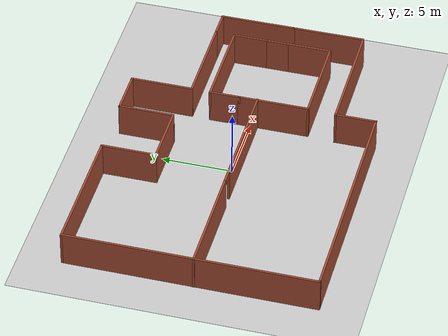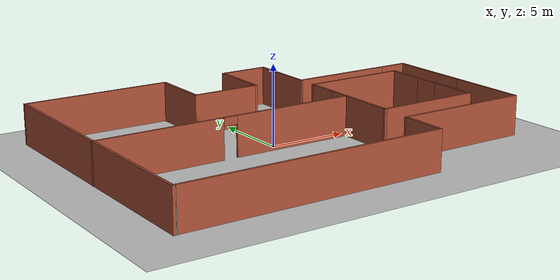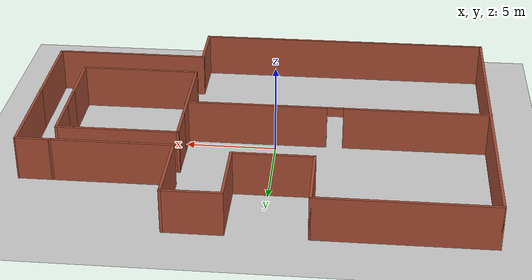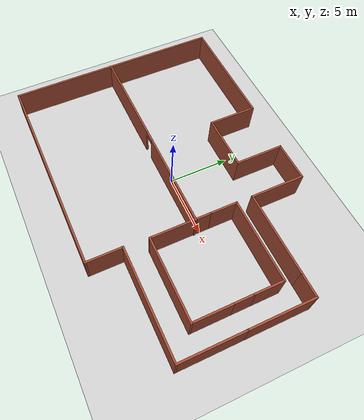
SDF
<sdf version="1.7">
 <world name="default">
  <include><uri>model://ground_plane</uri></include>
  <include><uri>model://sun</uri></include>
  <gravity>0 0 -9.8</gravity>
  <magnetic_field>6e-06 2.3e-05 -4.2e-05</magnetic_field>
  <atmosphere type="adiabatic"/>
  <physics type="ode">
   <max_step_size>0.001</max_step_size>
   <real_time_factor>1</real_time_factor>
   <real_time_update_rate>1000</real_time_update_rate>
  </physics>
  <scene><ambient>0.4 0.4 0.4 1</ambient><background>0.7 0.7 0.7 1</background><shadows>1</shadows></scene>
  <spherical_coordinates>
   <surface_model>EARTH_WGS84</surface_model>
   <latitude_deg>0</latitude_deg>
   <longitude_deg>0</longitude_deg>
   <elevation>0</elevation>
   <heading_deg>0</heading_deg>
  </spherical_coordinates>
  <model name="Building">
   <link name="Wall_1">
    <pose>-11.6652 8.8 0 0 -0 0</pose>
    <visual name="Wall_1_Visual">
     <pose>0 0 1.25 0 -0 0</pose>
     <geometry><box><size>9.5 0.15 2.5</size></box></geometry>
     <material>
      <script><uri>file://media/materials/scripts/gazebo.material</uri><name>Gazebo/Bricks</name></script>
      <ambient>1 1 1 1</ambient>
      <shader type="pixel"/>
     </material>
     <meta><layer>0</layer></meta>
    </visual>
    <collision name="Wall_1_Collision">
     <pose>0 0 1.25 0 -0 0</pose>
     <geometry><box><size>9.5 0.15 2.5</size></box></geometry>
     <surface>
      <friction>
       <ode><mu>1</mu><mu2>1</mu2><fdir1>0 0 0</fdir1><slip1>0</slip1><slip2>0</slip2></ode>
       <torsional>
        <coefficient>1</coefficient>
        <patch_radius>0</patch_radius>
        <surface_radius>0</surface_radius>
        <use_patch_radius>1</use_patch_radius>
        <ode><slip>0</slip></ode>
       </torsional>
      </friction>
      <bounce><restitution_coefficient>0</restitution_coefficient><threshold>1e+06</threshold></bounce>
      <contact>
       <collide_without_contact>0</collide_without_contact>
       <collide_without_contact_bitmask>1</collide_without_contact_bitmask>
       <collide_bitmask>1</collide_bitmask>
       <ode>
        <soft_cfm>0</soft_cfm>
        <soft_erp>0.2</soft_erp>
        <kp>1e+13</kp>
        <kd>1</kd>
        <max_vel>0.01</max_vel>
        <min_depth>0</min_depth>
       </ode>
       <bullet>
        <split_impulse>1</split_impulse>
        <split_impulse_penetration_threshold>-0.01</split_impulse_penetration_threshold>
        <soft_cfm>0</soft_cfm>
        <soft_erp>0.2</soft_erp>
        <kp>1e+13</kp>
        <kd>1</kd>
       </bullet>
      </contact>
     </surface>
    </collision>
   </link>
   <link name="Wall_10">
    <pose>-1.09018 8.8 0 0 -0 0</pose>
    <visual name="Wall_10_Visual">
     <pose>0 0 1.25 0 -0 0</pose>
     <geometry><box><size>3.25 0.15 2.5</size></box></geometry>
     <material>
      <script><uri>file://media/materials/scripts/gazebo.material</uri><name>Gazebo/Bricks</name></script>
      <ambient>1 1 1 1</ambient>
      <shader type="pixel"/>
     </material>
     <meta><layer>0</layer></meta>
    </visual>
    <collision name="Wall_10_Collision">
     <pose>0 0 1.25 0 -0 0</pose>
     <geometry><box><size>3.25 0.15 2.5</size></box></geometry>
     <surface>
      <friction>
       <ode><mu>1</mu><mu2>1</mu2><fdir1>0 0 0</fdir1><slip1>0</slip1><slip2>0</slip2></ode>
       <torsional>
        <coefficient>1</coefficient>
        <patch_radius>0</patch_radius>
        <surface_radius>0</surface_radius>
        <use_patch_radius>1</use_patch_radius>
        <ode><slip>0</slip></ode>
       </torsional>
      </friction>
      <bounce><restitution_coefficient>0</restitution_coefficient><threshold>1e+06</threshold></bounce>
      <contact>
       <collide_without_contact>0</collide_without_contact>
       <collide_without_contact_bitmask>1</collide_without_contact_bitmask>
       <collide_bitmask>1</collide_bitmask>
       <ode>
        <soft_cfm>0</soft_cfm>
        <soft_erp>0.2</soft_erp>
        <kp>1e+13</kp>
        <kd>1</kd>
        <max_vel>0.01</max_vel>
        <min_depth>0</min_depth>
       </ode>
       <bullet>
        <split_impulse>1</split_impulse>
        <split_impulse_penetration_threshold>-0.01</split_impulse_penetration_threshold>
        <soft_cfm>0</soft_cfm>
        <soft_erp>0.2</soft_erp>
        <kp>1e+13</kp>
        <kd>1</kd>
       </bullet>
      </contact>
     </surface>
    </collision>
   </link>
   <link name="Wall_11">
    <pose>0.45982 6.625 0 0 0 -1.5708</pose>
    <visual name="Wall_11_Visual">
     <pose>0 0 1.25 0 -0 0</pose>
     <geometry><box><size>4.5 0.15 2.5</size></box></geometry>
     <material>
      <script><uri>file://media/materials/scripts/gazebo.material</uri><name>Gazebo/Bricks</name></script>
      <ambient>1 1 1 1</ambient>
      <shader type="pixel"/>
     </material>
     <meta><layer>0</layer></meta>
    </visual>
    <collision name="Wall_11_Collision">
     <pose>0 0 1.25 0 -0 0</pose>
     <geometry><box><size>4.5 0.15 2.5</size></box></geometry>
     <surface>
      <friction>
       <ode><mu>1</mu><mu2>1</mu2><fdir1>0 0 0</fdir1><slip1>0</slip1><slip2>0</slip2></ode>
       <torsional>
        <coefficient>1</coefficient>
        <patch_radius>0</patch_radius>
        <surface_radius>0</surface_radius>
        <use_patch_radius>1</use_patch_radius>
        <ode><slip>0</slip></ode>
       </torsional>
      </friction>
      <bounce><restitution_coefficient>0</restitution_coefficient><threshold>1e+06</threshold></bounce>
      <contact>
       <collide_without_contact>0</collide_without_contact>
       <collide_without_contact_bitmask>1</collide_without_contact_bitmask>
       <collide_bitmask>1</collide_bitmask>
       <ode>
        <soft_cfm>0</soft_cfm>
        <soft_erp>0.2</soft_erp>
        <kp>1e+13</kp>
        <kd>1</kd>
        <max_vel>0.01</max_vel>
        <min_depth>0</min_depth>
       </ode>
       <bullet>
        <split_impulse>1</split_impulse>
        <split_impulse_penetration_threshold>-0.01</split_impulse_penetration_threshold>
        <soft_cfm>0</soft_cfm>
        <soft_erp>0.2</soft_erp>
        <kp>1e+13</kp>
        <kd>1</kd>
       </bullet>
      </contact>
     </surface>
    </collision>
   </link>
   <link name="Wall_30">
    <pose>0.434769 2.05416 0 0 0 -1.5708</pose>
    <visual name="Wall_30_Visual">
     <pose>0 0 1.25 0 -0 0</pose>
     <geometry><box><size>2.25 0.15 2.5</size></box></geometry>
     <material>
      <script><uri>file://media/materials/scripts/gazebo.material</uri><name>Gazebo/Bricks</name></script>
      <ambient>1 1 1 1</ambient>
      <shader type="pixel"/>
     </material>
     <meta><layer>0</layer></meta>
    </visual>
    <collision name="Wall_30_Collision">
     <pose>0 0 1.25 0 -0 0</pose>
     <geometry><box><size>2.25 0.15 2.5</size></box></geometry>
     <surface>
      <friction>
       <ode><mu>1</mu><mu2>1</mu2><fdir1>0 0 0</fdir1><slip1>0</slip1><slip2>0</slip2></ode>
       <torsional>
        <coefficient>1</coefficient>
        <patch_radius>0</patch_radius>
        <surface_radius>0</surface_radius>
        <use_patch_radius>1</use_patch_radius>
        <ode><slip>0</slip></ode>
       </torsional>
      </friction>
      <bounce><restitution_coefficient>0</restitution_coefficient><threshold>1e+06</threshold></bounce>
      <contact>
       <collide_without_contact>0</collide_without_contact>
       <collide_without_contact_bitmask>1</collide_without_contact_bitmask>
       <collide_bitmask>1</collide_bitmask>
       <ode>
        <soft_cfm>0</soft_cfm>
        <soft_erp>0.2</soft_erp>
        <kp>1e+13</kp>
        <kd>1</kd>
        <max_vel>0.01</max_vel>
        <min_depth>0</min_depth>
       </ode>
       <bullet>
        <split_impulse>1</split_impulse>
        <split_impulse_penetration_threshold>-0.01</split_impulse_penetration_threshold>
        <soft_cfm>0</soft_cfm>
        <soft_erp>0.2</soft_erp>
        <kp>1e+13</kp>
        <kd>1</kd>
       </bullet>
      </contact>
     </surface>
    </collision>
   </link>
   <link name="Wall_32">
    <pose>3.75982 4.45 0 0 -0 0</pose>
    <visual name="Wall_32_Visual">
     <pose>0 0 1.25 0 -0 0</pose>
     <geometry><box><size>6.75 0.15 2.5</size></box></geometry>
     <material>
      <script><uri>file://media/materials/scripts/gazebo.material</uri><name>Gazebo/Bricks</name></script>
      <ambient>1 1 1 1</ambient>
      <shader type="pixel"/>
     </material>
     <meta><layer>0</layer></meta>
    </visual>
    <collision name="Wall_32_Collision">
     <pose>0 0 1.25 0 -0 0</pose>
     <geometry><box><size>6.75 0.15 2.5</size></box></geometry>
     <surface>
      <friction>
       <ode><mu>1</mu><mu2>1</mu2><fdir1>0 0 0</fdir1><slip1>0</slip1><slip2>0</slip2></ode>
       <torsional>
        <coefficient>1</coefficient>
        <patch_radius>0</patch_radius>
        <surface_radius>0</surface_radius>
        <use_patch_radius>1</use_patch_radius>
        <ode><slip>0</slip></ode>
       </torsional>
      </friction>
      <bounce><restitution_coefficient>0</restitution_coefficient><threshold>1e+06</threshold></bounce>
      <contact>
       <collide_without_contact>0</collide_without_contact>
       <collide_without_contact_bitmask>1</collide_without_contact_bitmask>
       <collide_bitmask>1</collide_bitmask>
       <ode>
        <soft_cfm>0</soft_cfm>
        <soft_erp>0.2</soft_erp>
        <kp>1e+13</kp>
        <kd>1</kd>
        <max_vel>0.01</max_vel>
        <min_depth>0</min_depth>
       </ode>
       <bullet>
        <split_impulse>1</split_impulse>
        <split_impulse_penetration_threshold>-0.01</split_impulse_penetration_threshold>
        <soft_cfm>0</soft_cfm>
        <soft_erp>0.2</soft_erp>
        <kp>1e+13</kp>
        <kd>1</kd>
       </bullet>
      </contact>
     </surface>
    </collision>
   </link>
   <link name="Wall_34">
    <pose>3.73477 3.10416 0 0 -0 0</pose>
    <visual name="Wall_34_Visual">
     <pose>0 0 1.25 0 -0 0</pose>
     <geometry><box><size>6.75 0.15 2.5</size></box></geometry>
     <material>
      <script><uri>file://media/materials/scripts/gazebo.material</uri><name>Gazebo/Bricks</name></script>
      <ambient>1 1 1 1</ambient>
      <shader type="pixel"/>
     </material>
     <meta><layer>0</layer></meta>
    </visual>
    <collision name="Wall_34_Collision">
     <pose>0 0 1.25 0 -0 0</pose>
     <geometry><box><size>6.75 0.15 2.5</size></box></geometry>
     <surface>
      <friction>
       <ode><mu>1</mu><mu2>1</mu2><fdir1>0 0 0</fdir1><slip1>0</slip1><slip2>0</slip2></ode>
       <torsional>
        <coefficient>1</coefficient>
        <patch_radius>0</patch_radius>
        <surface_radius>0</surface_radius>
        <use_patch_radius>1</use_patch_radius>
        <ode><slip>0</slip></ode>
       </torsional>
      </friction>
      <bounce><restitution_coefficient>0</restitution_coefficient><threshold>1e+06</threshold></bounce>
      <contact>
       <collide_without_contact>0</collide_without_contact>
       <collide_without_contact_bitmask>1</collide_without_contact_bitmask>
       <collide_bitmask>1</collide_bitmask>
       <ode>
        <soft_cfm>0</soft_cfm>
        <soft_erp>0.2</soft_erp>
        <kp>1e+13</kp>
        <kd>1</kd>
        <max_vel>0.01</max_vel>
        <min_depth>0</min_depth>
       </ode>
       <bullet>
        <split_impulse>1</split_impulse>
        <split_impulse_penetration_threshold>-0.01</split_impulse_penetration_threshold>
        <soft_cfm>0</soft_cfm>
        <soft_erp>0.2</soft_erp>
        <kp>1e+13</kp>
        <kd>1</kd>
       </bullet>
      </contact>
     </surface>
    </collision>
   </link>
   <link name="Wall_36">
    <pose>7.03477 1.92916 0 0 0 -1.5708</pose>
    <visual name="Wall_36_Visual">
     <pose>0 0 1.25 0 -0 0</pose>
     <geometry><box><size>2.5 0.15 2.5</size></box></geometry>
     <material>
      <script><uri>file://media/materials/scripts/gazebo.material</uri><name>Gazebo/Bricks</name></script>
      <ambient>1 1 1 1</ambient>
      <shader type="pixel"/>
     </material>
     <meta><layer>0</layer></meta>
    </visual>
    <collision name="Wall_36_Collision">
     <pose>0 0 1.25 0 -0 0</pose>
     <geometry><box><size>2.5 0.15 2.5</size></box></geometry>
     <surface>
      <friction>
       <ode><mu>1</mu><mu2>1</mu2><fdir1>0 0 0</fdir1><slip1>0</slip1><slip2>0</slip2></ode>
       <torsional>
        <coefficient>1</coefficient>
        <patch_radius>0</patch_radius>
        <surface_radius>0</surface_radius>
        <use_patch_radius>1</use_patch_radius>
        <ode><slip>0</slip></ode>
       </torsional>
      </friction>
      <bounce><restitution_coefficient>0</restitution_coefficient><threshold>1e+06</threshold></bounce>
      <contact>
       <collide_without_contact>0</collide_without_contact>
       <collide_without_contact_bitmask>1</collide_without_contact_bitmask>
       <collide_bitmask>1</collide_bitmask>
       <ode>
        <soft_cfm>0</soft_cfm>
        <soft_erp>0.2</soft_erp>
        <kp>1e+13</kp>
        <kd>1</kd>
        <max_vel>0.01</max_vel>
        <min_depth>0</min_depth>
       </ode>
       <bullet>
        <split_impulse>1</split_impulse>
        <split_impulse_penetration_threshold>-0.01</split_impulse_penetration_threshold>
        <soft_cfm>0</soft_cfm>
        <soft_erp>0.2</soft_erp>
        <kp>1e+13</kp>
        <kd>1</kd>
       </bullet>
      </contact>
     </surface>
    </collision>
   </link>
   <link name="Wall_38">
    <pose>7.9847 4.44981 0 0 0 -0.000207</pose>
    <visual name="Wall_38_Visual">
     <pose>0 0 1.25 0 -0 0</pose>
     <geometry><box><size>2 0.15 2.5</size></box></geometry>
     <material>
      <script><uri>file://media/materials/scripts/gazebo.material</uri><name>Gazebo/Bricks</name></script>
      <ambient>1 1 1 1</ambient>
      <shader type="pixel"/>
     </material>
     <meta><layer>0</layer></meta>
    </visual>
    <collision name="Wall_38_Collision">
     <pose>0 0 1.25 0 -0 0</pose>
     <geometry><box><size>2 0.15 2.5</size></box></geometry>
     <surface>
      <friction>
       <ode><mu>1</mu><mu2>1</mu2><fdir1>0 0 0</fdir1><slip1>0</slip1><slip2>0</slip2></ode>
       <torsional>
        <coefficient>1</coefficient>
        <patch_radius>0</patch_radius>
        <surface_radius>0</surface_radius>
        <use_patch_radius>1</use_patch_radius>
        <ode><slip>0</slip></ode>
       </torsional>
      </friction>
      <bounce><restitution_coefficient>0</restitution_coefficient><threshold>1e+06</threshold></bounce>
      <contact>
       <collide_without_contact>0</collide_without_contact>
       <collide_without_contact_bitmask>1</collide_without_contact_bitmask>
       <collide_bitmask>1</collide_bitmask>
       <ode>
        <soft_cfm>0</soft_cfm>
        <soft_erp>0.2</soft_erp>
        <kp>1e+13</kp>
        <kd>1</kd>
        <max_vel>0.01</max_vel>
        <min_depth>0</min_depth>
       </ode>
       <bullet>
        <split_impulse>1</split_impulse>
        <split_impulse_penetration_threshold>-0.01</split_impulse_penetration_threshold>
        <soft_cfm>0</soft_cfm>
        <soft_erp>0.2</soft_erp>
        <kp>1e+13</kp>
        <kd>1</kd>
       </bullet>
      </contact>
     </surface>
    </collision>
   </link>
   <link name="Wall_39">
    <pose>8.90957 1.80212 0 0 0 -1.5708</pose>
    <visual name="Wall_39_Visual">
     <pose>0 0 1.25 0 -0 0</pose>
     <geometry><box><size>5.445 0.15 2.5</size></box></geometry>
     <material>
      <script><uri>file://media/materials/scripts/gazebo.material</uri><name>Gazebo/Bricks</name></script>
      <ambient>1 1 1 1</ambient>
      <shader type="pixel"/>
     </material>
     <meta><layer>0</layer></meta>
    </visual>
    <collision name="Wall_39_Collision">
     <pose>0 0 1.25 0 -0 0</pose>
     <geometry><box><size>5.445 0.15 2.5</size></box></geometry>
     <surface>
      <friction>
       <ode><mu>1</mu><mu2>1</mu2><fdir1>0 0 0</fdir1><slip1>0</slip1><slip2>0</slip2></ode>
       <torsional>
        <coefficient>1</coefficient>
        <patch_radius>0</patch_radius>
        <surface_radius>0</surface_radius>
        <use_patch_radius>1</use_patch_radius>
        <ode><slip>0</slip></ode>
       </torsional>
      </friction>
      <bounce><restitution_coefficient>0</restitution_coefficient><threshold>1e+06</threshold></bounce>
      <contact>
       <collide_without_contact>0</collide_without_contact>
       <collide_without_contact_bitmask>1</collide_without_contact_bitmask>
       <collide_bitmask>1</collide_bitmask>
       <ode>
        <soft_cfm>0</soft_cfm>
        <soft_erp>0.2</soft_erp>
        <kp>1e+13</kp>
        <kd>1</kd>
        <max_vel>0.01</max_vel>
        <min_depth>0</min_depth>
       </ode>
       <bullet>
        <split_impulse>1</split_impulse>
        <split_impulse_penetration_threshold>-0.01</split_impulse_penetration_threshold>
        <soft_cfm>0</soft_cfm>
        <soft_erp>0.2</soft_erp>
        <kp>1e+13</kp>
        <kd>1</kd>
       </bullet>
      </contact>
     </surface>
    </collision>
   </link>
   <link name="Wall_43">
    <pose>7.03477 -0.045843 0 0 0 -1.5708</pose>
    <visual name="Wall_43_Visual">
     <pose>0 0 1.25 0 -0 0</pose>
     <geometry><box><size>1.75 0.15 2.5</size></box></geometry>
     <material>
      <script><uri>file://media/materials/scripts/gazebo.material</uri><name>Gazebo/Bricks</name></script>
      <ambient>1 1 1 1</ambient>
      <shader type="pixel"/>
     </material>
     <meta><layer>0</layer></meta>
    </visual>
    <collision name="Wall_43_Collision">
     <pose>0 0 1.25 0 -0 0</pose>
     <geometry><box><size>1.75 0.15 2.5</size></box></geometry>
     <surface>
      <friction>
       <ode><mu>1</mu><mu2>1</mu2><fdir1>0 0 0</fdir1><slip1>0</slip1><slip2>0</slip2></ode>
       <torsional>
        <coefficient>1</coefficient>
        <patch_radius>0</patch_radius>
        <surface_radius>0</surface_radius>
        <use_patch_radius>1</use_patch_radius>
        <ode><slip>0</slip></ode>
       </torsional>
      </friction>
      <bounce><restitution_coefficient>0</restitution_coefficient><threshold>1e+06</threshold></bounce>
      <contact>
       <collide_without_contact>0</collide_without_contact>
       <collide_without_contact_bitmask>1</collide_without_contact_bitmask>
       <collide_bitmask>1</collide_bitmask>
       <ode>
        <soft_cfm>0</soft_cfm>
        <soft_erp>0.2</soft_erp>
        <kp>1e+13</kp>
        <kd>1</kd>
        <max_vel>0.01</max_vel>
        <min_depth>0</min_depth>
       </ode>
       <bullet>
        <split_impulse>1</split_impulse>
        <split_impulse_penetration_threshold>-0.01</split_impulse_penetration_threshold>
        <soft_cfm>0</soft_cfm>
        <soft_erp>0.2</soft_erp>
        <kp>1e+13</kp>
        <kd>1</kd>
       </bullet>
      </contact>
     </surface>
    </collision>
   </link>
   <link name="Wall_47">
    <pose>7.03477 -2.39584 0 0 0 -1.5708</pose>
    <visual name="Wall_47_Visual">
     <pose>0 0 1.25 0 -0 0</pose>
     <geometry><box><size>3.25 0.15 2.5</size></box></geometry>
     <material>
      <script><uri>file://media/materials/scripts/gazebo.material</uri><name>Gazebo/Bricks</name></script>
      <ambient>1 1 1 1</ambient>
      <shader type="pixel"/>
     </material>
     <meta><layer>0</layer></meta>
    </visual>
    <collision name="Wall_47_Collision">
     <pose>0 0 1.25 0 -0 0</pose>
     <geometry><box><size>3.25 0.15 2.5</size></box></geometry>
     <surface>
      <friction>
       <ode><mu>1</mu><mu2>1</mu2><fdir1>0 0 0</fdir1><slip1>0</slip1><slip2>0</slip2></ode>
       <torsional>
        <coefficient>1</coefficient>
        <patch_radius>0</patch_radius>
        <surface_radius>0</surface_radius>
        <use_patch_radius>1</use_patch_radius>
        <ode><slip>0</slip></ode>
       </torsional>
      </friction>
      <bounce><restitution_coefficient>0</restitution_coefficient><threshold>1e+06</threshold></bounce>
      <contact>
       <collide_without_contact>0</collide_without_contact>
       <collide_without_contact_bitmask>1</collide_without_contact_bitmask>
       <collide_bitmask>1</collide_bitmask>
       <ode>
        <soft_cfm>0</soft_cfm>
        <soft_erp>0.2</soft_erp>
        <kp>1e+13</kp>
        <kd>1</kd>
        <max_vel>0.01</max_vel>
        <min_depth>0</min_depth>
       </ode>
       <bullet>
        <split_impulse>1</split_impulse>
        <split_impulse_penetration_threshold>-0.01</split_impulse_penetration_threshold>
        <soft_cfm>0</soft_cfm>
        <soft_erp>0.2</soft_erp>
        <kp>1e+13</kp>
        <kd>1</kd>
       </bullet>
      </contact>
     </surface>
    </collision>
   </link>
   <link name="Wall_48">
    <pose>3.73477 -3.94584 0 0 -0 3.14159</pose>
    <visual name="Wall_48_Visual">
     <pose>0 0 1.25 0 -0 0</pose>
     <geometry><box><size>6.75 0.15 2.5</size></box></geometry>
     <material>
      <script><uri>file://media/materials/scripts/gazebo.material</uri><name>Gazebo/Bricks</name></script>
      <ambient>1 1 1 1</ambient>
      <shader type="pixel"/>
     </material>
     <meta><layer>0</layer></meta>
    </visual>
    <collision name="Wall_48_Collision">
     <pose>0 0 1.25 0 -0 0</pose>
     <geometry><box><size>6.75 0.15 2.5</size></box></geometry>
     <surface>
      <friction>
       <ode><mu>1</mu><mu2>1</mu2><fdir1>0 0 0</fdir1><slip1>0</slip1><slip2>0</slip2></ode>
       <torsional>
        <coefficient>1</coefficient>
        <patch_radius>0</patch_radius>
        <surface_radius>0</surface_radius>
        <use_patch_radius>1</use_patch_radius>
        <ode><slip>0</slip></ode>
       </torsional>
      </friction>
      <bounce><restitution_coefficient>0</restitution_coefficient><threshold>1e+06</threshold></bounce>
      <contact>
       <collide_without_contact>0</collide_without_contact>
       <collide_without_contact_bitmask>1</collide_without_contact_bitmask>
       <collide_bitmask>1</collide_bitmask>
       <ode>
        <soft_cfm>0</soft_cfm>
        <soft_erp>0.2</soft_erp>
        <kp>1e+13</kp>
        <kd>1</kd>
        <max_vel>0.01</max_vel>
        <min_depth>0</min_depth>
       </ode>
       <bullet>
        <split_impulse>1</split_impulse>
        <split_impulse_penetration_threshold>-0.01</split_impulse_penetration_threshold>
        <soft_cfm>0</soft_cfm>
        <soft_erp>0.2</soft_erp>
        <kp>1e+13</kp>
        <kd>1</kd>
       </bullet>
      </contact>
     </surface>
    </collision>
   </link>
   <link name="Wall_49">
    <pose>0.434769 -1.47084 0 0 -0 1.5708</pose>
    <visual name="Wall_49_Visual">
     <pose>0 0 1.25 0 -0 0</pose>
     <geometry><box><size>5.1 0.15 2.5</size></box></geometry>
     <material>
      <script><uri>file://media/materials/scripts/gazebo.material</uri><name>Gazebo/Bricks</name></script>
      <ambient>1 1 1 1</ambient>
      <shader type="pixel"/>
     </material>
     <meta><layer>0</layer></meta>
    </visual>
    <collision name="Wall_49_Collision">
     <pose>0 0 1.25 0 -0 0</pose>
     <geometry><box><size>5.1 0.15 2.5</size></box></geometry>
     <surface>
      <friction>
       <ode><mu>1</mu><mu2>1</mu2><fdir1>0 0 0</fdir1><slip1>0</slip1><slip2>0</slip2></ode>
       <torsional>
        <coefficient>1</coefficient>
        <patch_radius>0</patch_radius>
        <surface_radius>0</surface_radius>
        <use_patch_radius>1</use_patch_radius>
        <ode><slip>0</slip></ode>
       </torsional>
      </friction>
      <bounce><restitution_coefficient>0</restitution_coefficient><threshold>1e+06</threshold></bounce>
      <contact>
       <collide_without_contact>0</collide_without_contact>
       <collide_without_contact_bitmask>1</collide_without_contact_bitmask>
       <collide_bitmask>1</collide_bitmask>
       <ode>
        <soft_cfm>0</soft_cfm>
        <soft_erp>0.2</soft_erp>
        <kp>1e+13</kp>
        <kd>1</kd>
        <max_vel>0.01</max_vel>
        <min_depth>0</min_depth>
       </ode>
       <bullet>
        <split_impulse>1</split_impulse>
        <split_impulse_penetration_threshold>-0.01</split_impulse_penetration_threshold>
        <soft_cfm>0</soft_cfm>
        <soft_erp>0.2</soft_erp>
        <kp>1e+13</kp>
        <kd>1</kd>
       </bullet>
      </contact>
     </surface>
    </collision>
   </link>
   <link name="Wall_51">
    <pose>8.90957 -3.39538 0 0 0 -1.5708</pose>
    <visual name="Wall_51_Visual">
     <pose>0 0 1.25 0 -0 0</pose>
     <geometry><box><size>5.25 0.15 2.5</size></box></geometry>
     <material>
      <script><uri>file://media/materials/scripts/gazebo.material</uri><name>Gazebo/Bricks</name></script>
      <ambient>1 1 1 1</ambient>
      <shader type="pixel"/>
     </material>
     <meta><layer>0</layer></meta>
    </visual>
    <collision name="Wall_51_Collision">
     <pose>0 0 1.25 0 -0 0</pose>
     <geometry><box><size>5.25 0.15 2.5</size></box></geometry>
     <surface>
      <friction>
       <ode><mu>1</mu><mu2>1</mu2><fdir1>0 0 0</fdir1><slip1>0</slip1><slip2>0</slip2></ode>
       <torsional>
        <coefficient>1</coefficient>
        <patch_radius>0</patch_radius>
        <surface_radius>0</surface_radius>
        <use_patch_radius>1</use_patch_radius>
        <ode><slip>0</slip></ode>
       </torsional>
      </friction>
      <bounce><restitution_coefficient>0</restitution_coefficient><threshold>1e+06</threshold></bounce>
      <contact>
       <collide_without_contact>0</collide_without_contact>
       <collide_without_contact_bitmask>1</collide_without_contact_bitmask>
       <collide_bitmask>1</collide_bitmask>
       <ode>
        <soft_cfm>0</soft_cfm>
        <soft_erp>0.2</soft_erp>
        <kp>1e+13</kp>
        <kd>1</kd>
        <max_vel>0.01</max_vel>
        <min_depth>0</min_depth>
       </ode>
       <bullet>
        <split_impulse>1</split_impulse>
        <split_impulse_penetration_threshold>-0.01</split_impulse_penetration_threshold>
        <soft_cfm>0</soft_cfm>
        <soft_erp>0.2</soft_erp>
        <kp>1e+13</kp>
        <kd>1</kd>
       </bullet>
      </contact>
     </surface>
    </collision>
   </link>
   <link name="Wall_54">
    <pose>4.60957 -5.94538 0 0 -0 3.14159</pose>
    <visual name="Wall_54_Visual">
     <pose>0 0 1.25 0 -0 0</pose>
     <geometry><box><size>8.75 0.15 2.5</size></box></geometry>
     <material>
      <script><uri>file://media/materials/scripts/gazebo.material</uri><name>Gazebo/Bricks</name></script>
      <ambient>1 1 1 1</ambient>
      <shader type="pixel"/>
     </material>
     <meta><layer>0</layer></meta>
    </visual>
    <collision name="Wall_54_Collision">
     <pose>0 0 1.25 0 -0 0</pose>
     <geometry><box><size>8.75 0.15 2.5</size></box></geometry>
     <surface>
      <friction>
       <ode><mu>1</mu><mu2>1</mu2><fdir1>0 0 0</fdir1><slip1>0</slip1><slip2>0</slip2></ode>
       <torsional>
        <coefficient>1</coefficient>
        <patch_radius>0</patch_radius>
        <surface_radius>0</surface_radius>
        <use_patch_radius>1</use_patch_radius>
        <ode><slip>0</slip></ode>
       </torsional>
      </friction>
      <bounce><restitution_coefficient>0</restitution_coefficient><threshold>1e+06</threshold></bounce>
      <contact>
       <collide_without_contact>0</collide_without_contact>
       <collide_without_contact_bitmask>1</collide_without_contact_bitmask>
       <collide_bitmask>1</collide_bitmask>
       <ode>
        <soft_cfm>0</soft_cfm>
        <soft_erp>0.2</soft_erp>
        <kp>1e+13</kp>
        <kd>1</kd>
        <max_vel>0.01</max_vel>
        <min_depth>0</min_depth>
       </ode>
       <bullet>
        <split_impulse>1</split_impulse>
        <split_impulse_penetration_threshold>-0.01</split_impulse_penetration_threshold>
        <soft_cfm>0</soft_cfm>
        <soft_erp>0.2</soft_erp>
        <kp>1e+13</kp>
        <kd>1</kd>
       </bullet>
      </contact>
     </surface>
    </collision>
   </link>
   <link name="Wall_55">
    <pose>0.309574 -7.37038 0 0 0 -1.5708</pose>
    <visual name="Wall_55_Visual">
     <pose>0 0 1.25 0 -0 0</pose>
     <geometry><box><size>3 0.15 2.5</size></box></geometry>
     <material>
      <script><uri>file://media/materials/scripts/gazebo.material</uri><name>Gazebo/Bricks</name></script>
      <ambient>1 1 1 1</ambient>
      <shader type="pixel"/>
     </material>
     <meta><layer>0</layer></meta>
    </visual>
    <collision name="Wall_55_Collision">
     <pose>0 0 1.25 0 -0 0</pose>
     <geometry><box><size>3 0.15 2.5</size></box></geometry>
     <surface>
      <friction>
       <ode><mu>1</mu><mu2>1</mu2><fdir1>0 0 0</fdir1><slip1>0</slip1><slip2>0</slip2></ode>
       <torsional>
        <coefficient>1</coefficient>
        <patch_radius>0</patch_radius>
        <surface_radius>0</surface_radius>
        <use_patch_radius>1</use_patch_radius>
        <ode><slip>0</slip></ode>
       </torsional>
      </friction>
      <bounce><restitution_coefficient>0</restitution_coefficient><threshold>1e+06</threshold></bounce>
      <contact>
       <collide_without_contact>0</collide_without_contact>
       <collide_without_contact_bitmask>1</collide_without_contact_bitmask>
       <collide_bitmask>1</collide_bitmask>
       <ode>
        <soft_cfm>0</soft_cfm>
        <soft_erp>0.2</soft_erp>
        <kp>1e+13</kp>
        <kd>1</kd>
        <max_vel>0.01</max_vel>
        <min_depth>0</min_depth>
       </ode>
       <bullet>
        <split_impulse>1</split_impulse>
        <split_impulse_penetration_threshold>-0.01</split_impulse_penetration_threshold>
        <soft_cfm>0</soft_cfm>
        <soft_erp>0.2</soft_erp>
        <kp>1e+13</kp>
        <kd>1</kd>
       </bullet>
      </contact>
     </surface>
    </collision>
   </link>
   <link name="Wall_56">
    <pose>-7.99043 -8.79538 0 0 -0 3.14159</pose>
    <visual name="Wall_56_Visual">
     <pose>0 0 1.25 0 -0 0</pose>
     <geometry><box><size>16.75 0.15 2.5</size></box></geometry>
     <material>
      <script><uri>file://media/materials/scripts/gazebo.material</uri><name>Gazebo/Bricks</name></script>
      <ambient>1 1 1 1</ambient>
      <shader type="pixel"/>
     </material>
     <meta><layer>0</layer></meta>
    </visual>
    <collision name="Wall_56_Collision">
     <pose>0 0 1.25 0 -0 0</pose>
     <geometry><box><size>16.75 0.15 2.5</size></box></geometry>
     <surface>
      <friction>
       <ode><mu>1</mu><mu2>1</mu2><fdir1>0 0 0</fdir1><slip1>0</slip1><slip2>0</slip2></ode>
       <torsional>
        <coefficient>1</coefficient>
        <patch_radius>0</patch_radius>
        <surface_radius>0</surface_radius>
        <use_patch_radius>1</use_patch_radius>
        <ode><slip>0</slip></ode>
       </torsional>
      </friction>
      <bounce><restitution_coefficient>0</restitution_coefficient><threshold>1e+06</threshold></bounce>
      <contact>
       <collide_without_contact>0</collide_without_contact>
       <collide_without_contact_bitmask>1</collide_without_contact_bitmask>
       <collide_bitmask>1</collide_bitmask>
       <ode>
        <soft_cfm>0</soft_cfm>
        <soft_erp>0.2</soft_erp>
        <kp>1e+13</kp>
        <kd>1</kd>
        <max_vel>0.01</max_vel>
        <min_depth>0</min_depth>
       </ode>
       <bullet>
        <split_impulse>1</split_impulse>
        <split_impulse_penetration_threshold>-0.01</split_impulse_penetration_threshold>
        <soft_cfm>0</soft_cfm>
        <soft_erp>0.2</soft_erp>
        <kp>1e+13</kp>
        <kd>1</kd>
       </bullet>
      </contact>
     </surface>
    </collision>
   </link>
   <link name="Wall_57">
    <pose>-16.2904 -8.79538 0 0 -0 0</pose>
    <visual name="Wall_57_Visual">
     <pose>0 0 1.25 0 -0 0</pose>
     <geometry><box><size>0.15 0.15 2.5</size></box></geometry>
     <material>
      <script><uri>file://media/materials/scripts/gazebo.material</uri><name>Gazebo/Grey</name></script>
      <ambient>1 1 1 1</ambient>
      <shader type="pixel"/>
     </material>
     <meta><layer>0</layer></meta>
    </visual>
    <collision name="Wall_57_Collision">
     <pose>0 0 1.25 0 -0 0</pose>
     <geometry><box><size>0.15 0.15 2.5</size></box></geometry>
     <surface>
      <friction>
       <ode><mu>1</mu><mu2>1</mu2><fdir1>0 0 0</fdir1><slip1>0</slip1><slip2>0</slip2></ode>
       <torsional>
        <coefficient>1</coefficient>
        <patch_radius>0</patch_radius>
        <surface_radius>0</surface_radius>
        <use_patch_radius>1</use_patch_radius>
        <ode><slip>0</slip></ode>
       </torsional>
      </friction>
      <bounce><restitution_coefficient>0</restitution_coefficient><threshold>1e+06</threshold></bounce>
      <contact>
       <collide_without_contact>0</collide_without_contact>
       <collide_without_contact_bitmask>1</collide_without_contact_bitmask>
       <collide_bitmask>1</collide_bitmask>
       <ode>
        <soft_cfm>0</soft_cfm>
        <soft_erp>0.2</soft_erp>
        <kp>1e+13</kp>
        <kd>1</kd>
        <max_vel>0.01</max_vel>
        <min_depth>0</min_depth>
       </ode>
       <bullet>
        <split_impulse>1</split_impulse>
        <split_impulse_penetration_threshold>-0.01</split_impulse_penetration_threshold>
        <soft_cfm>0</soft_cfm>
        <soft_erp>0.2</soft_erp>
        <kp>1e+13</kp>
        <kd>1</kd>
       </bullet>
      </contact>
     </surface>
    </collision>
   </link>
   <link name="Wall_60">
    <pose>-16.3402 0 0 0 0 -1.5708</pose>
    <visual name="Wall_60_Visual">
     <pose>0 0 1.25 0 -0 0</pose>
     <geometry><box><size>17.75 0.15 2.5</size></box></geometry>
     <material>
      <script><uri>file://media/materials/scripts/gazebo.material</uri><name>Gazebo/Bricks</name></script>
      <ambient>1 1 1 1</ambient>
      <shader type="pixel"/>
     </material>
     <meta><layer>0</layer></meta>
    </visual>
    <collision name="Wall_60_Collision">
     <pose>0 0 1.25 0 -0 0</pose>
     <geometry><box><size>17.75 0.15 2.5</size></box></geometry>
     <surface>
      <friction>
       <ode><mu>1</mu><mu2>1</mu2><fdir1>0 0 0</fdir1><slip1>0</slip1><slip2>0</slip2></ode>
       <torsional>
        <coefficient>1</coefficient>
        <patch_radius>0</patch_radius>
        <surface_radius>0</surface_radius>
        <use_patch_radius>1</use_patch_radius>
        <ode><slip>0</slip></ode>
       </torsional>
      </friction>
      <bounce><restitution_coefficient>0</restitution_coefficient><threshold>1e+06</threshold></bounce>
      <contact>
       <collide_without_contact>0</collide_without_contact>
       <collide_without_contact_bitmask>1</collide_without_contact_bitmask>
       <collide_bitmask>1</collide_bitmask>
       <ode>
        <soft_cfm>0</soft_cfm>
        <soft_erp>0.2</soft_erp>
        <kp>1e+13</kp>
        <kd>1</kd>
        <max_vel>0.01</max_vel>
        <min_depth>0</min_depth>
       </ode>
       <bullet>
        <split_impulse>1</split_impulse>
        <split_impulse_penetration_threshold>-0.01</split_impulse_penetration_threshold>
        <soft_cfm>0</soft_cfm>
        <soft_erp>0.2</soft_erp>
        <kp>1e+13</kp>
        <kd>1</kd>
       </bullet>
      </contact>
     </surface>
    </collision>
   </link>
   <link name="Wall_62">
    <pose>-7.94557 -0.292213 0 0 -0 3.14159</pose>
    <visual name="Wall_62_Visual_0">
     <pose>-4.52361 0 1.25 0 -0 0</pose>
     <geometry><box><size>7.95278 0.15 2.5</size></box></geometry>
     <material>
      <script><uri>file://media/materials/scripts/gazebo.material</uri><name>Gazebo/Bricks</name></script>
      <ambient>1 1 1 1</ambient>
      <shader type="pixel"/>
     </material>
     <meta><layer>0</layer></meta>
    </visual>
    <visual name="Wall_62_Visual_1">
     <pose>4.42639 0 1.25 0 -0 0</pose>
     <geometry><box><size>8.14722 0.15 2.5</size></box></geometry>
     <material>
      <script><uri>file://media/materials/scripts/gazebo.material</uri><name>Gazebo/Bricks</name></script>
      <ambient>1 1 1 1</ambient>
      <shader type="pixel"/>
     </material>
     <meta><layer>0</layer></meta>
    </visual>
    <visual name="Wall_62_Visual_2">
     <pose>-0.097219 0 2.25 0 -0 0</pose>
     <geometry><box><size>0.9 0.15 0.5</size></box></geometry>
     <material>
      <script><uri>file://media/materials/scripts/gazebo.material</uri><name>Gazebo/Bricks</name></script>
      <ambient>1 1 1 1</ambient>
      <shader type="pixel"/>
     </material>
     <meta><layer>0</layer></meta>
    </visual>
    <collision name="Wall_62_Collision_1">
     <pose>4.42639 0 1.25 0 -0 0</pose>
     <geometry><box><size>8.14722 0.15 2.5</size></box></geometry>
     <surface>
      <friction>
       <ode><mu>1</mu><mu2>1</mu2><fdir1>0 0 0</fdir1><slip1>0</slip1><slip2>0</slip2></ode>
       <torsional>
        <coefficient>1</coefficient>
        <patch_radius>0</patch_radius>
        <surface_radius>0</surface_radius>
        <use_patch_radius>1</use_patch_radius>
        <ode><slip>0</slip></ode>
       </torsional>
      </friction>
      <bounce><restitution_coefficient>0</restitution_coefficient><threshold>1e+06</threshold></bounce>
      <contact>
       <collide_without_contact>0</collide_without_contact>
       <collide_without_contact_bitmask>1</collide_without_contact_bitmask>
       <collide_bitmask>1</collide_bitmask>
       <ode>
        <soft_cfm>0</soft_cfm>
        <soft_erp>0.2</soft_erp>
        <kp>1e+13</kp>
        <kd>1</kd>
        <max_vel>0.01</max_vel>
        <min_depth>0</min_depth>
       </ode>
       <bullet>
        <split_impulse>1</split_impulse>
        <split_impulse_penetration_threshold>-0.01</split_impulse_penetration_threshold>
        <soft_cfm>0</soft_cfm>
        <soft_erp>0.2</soft_erp>
        <kp>1e+13</kp>
        <kd>1</kd>
       </bullet>
      </contact>
     </surface>
    </collision>
    <collision name="Wall_62_Collision_0">
     <pose>-4.52361 0 1.25 0 -0 0</pose>
     <geometry><box><size>7.95278 0.15 2.5</size></box></geometry>
     <surface>
      <friction>
       <ode><mu>1</mu><mu2>1</mu2><fdir1>0 0 0</fdir1><slip1>0</slip1><slip2>0</slip2></ode>
       <torsional>
        <coefficient>1</coefficient>
        <patch_radius>0</patch_radius>
        <surface_radius>0</surface_radius>
        <use_patch_radius>1</use_patch_radius>
        <ode><slip>0</slip></ode>
       </torsional>
      </friction>
      <bounce><restitution_coefficient>0</restitution_coefficient><threshold>1e+06</threshold></bounce>
      <contact>
       <collide_without_contact>0</collide_without_contact>
       <collide_without_contact_bitmask>1</collide_without_contact_bitmask>
       <collide_bitmask>1</collide_bitmask>
       <ode>
        <soft_cfm>0</soft_cfm>
        <soft_erp>0.2</soft_erp>
        <kp>1e+13</kp>
        <kd>1</kd>
        <max_vel>0.01</max_vel>
        <min_depth>0</min_depth>
       </ode>
       <bullet>
        <split_impulse>1</split_impulse>
        <split_impulse_penetration_threshold>-0.01</split_impulse_penetration_threshold>
        <soft_cfm>0</soft_cfm>
        <soft_erp>0.2</soft_erp>
        <kp>1e+13</kp>
        <kd>1</kd>
       </bullet>
      </contact>
     </surface>
    </collision>
    <collision name="Wall_62_Collision_2">
     <pose>-0.097219 0 2.25 0 -0 0</pose>
     <geometry><box><size>0.9 0.15 0.5</size></box></geometry>
     <surface>
      <friction>
       <ode><mu>1</mu><mu2>1</mu2><fdir1>0 0 0</fdir1><slip1>0</slip1><slip2>0</slip2></ode>
       <torsional>
        <coefficient>1</coefficient>
        <patch_radius>0</patch_radius>
        <surface_radius>0</surface_radius>
        <use_patch_radius>1</use_patch_radius>
        <ode><slip>0</slip></ode>
       </torsional>
      </friction>
      <bounce><restitution_coefficient>0</restitution_coefficient><threshold>1e+06</threshold></bounce>
      <contact>
       <collide_without_contact>0</collide_without_contact>
       <collide_without_contact_bitmask>1</collide_without_contact_bitmask>
       <collide_bitmask>1</collide_bitmask>
       <ode>
        <soft_cfm>0</soft_cfm>
        <soft_erp>0.2</soft_erp>
        <kp>1e+13</kp>
        <kd>1</kd>
        <max_vel>0.01</max_vel>
        <min_depth>0</min_depth>
       </ode>
       <bullet>
        <split_impulse>1</split_impulse>
        <split_impulse_penetration_threshold>-0.01</split_impulse_penetration_threshold>
        <soft_cfm>0</soft_cfm>
        <soft_erp>0.2</soft_erp>
        <kp>1e+13</kp>
        <kd>1</kd>
       </bullet>
      </contact>
     </surface>
    </collision>
   </link>
   <link name="Wall_7">
    <pose>-6.99018 6.875 0 0 0 -1.5708</pose>
    <visual name="Wall_7_Visual">
     <pose>0 0 1.25 0 -0 0</pose>
     <geometry><box><size>4 0.15 2.5</size></box></geometry>
     <material>
      <script><uri>file://media/materials/scripts/gazebo.material</uri><name>Gazebo/Bricks</name></script>
      <ambient>1 1 1 1</ambient>
      <shader type="pixel"/>
     </material>
     <meta><layer>0</layer></meta>
    </visual>
    <collision name="Wall_7_Collision">
     <pose>0 0 1.25 0 -0 0</pose>
     <geometry><box><size>4 0.15 2.5</size></box></geometry>
     <surface>
      <friction>
       <ode><mu>1</mu><mu2>1</mu2><fdir1>0 0 0</fdir1><slip1>0</slip1><slip2>0</slip2></ode>
       <torsional>
        <coefficient>1</coefficient>
        <patch_radius>0</patch_radius>
        <surface_radius>0</surface_radius>
        <use_patch_radius>1</use_patch_radius>
        <ode><slip>0</slip></ode>
       </torsional>
      </friction>
      <bounce><restitution_coefficient>0</restitution_coefficient><threshold>1e+06</threshold></bounce>
      <contact>
       <collide_without_contact>0</collide_without_contact>
       <collide_without_contact_bitmask>1</collide_without_contact_bitmask>
       <collide_bitmask>1</collide_bitmask>
       <ode>
        <soft_cfm>0</soft_cfm>
        <soft_erp>0.2</soft_erp>
        <kp>1e+13</kp>
        <kd>1</kd>
        <max_vel>0.01</max_vel>
        <min_depth>0</min_depth>
       </ode>
       <bullet>
        <split_impulse>1</split_impulse>
        <split_impulse_penetration_threshold>-0.01</split_impulse_penetration_threshold>
        <soft_cfm>0</soft_cfm>
        <soft_erp>0.2</soft_erp>
        <kp>1e+13</kp>
        <kd>1</kd>
       </bullet>
      </contact>
     </surface>
    </collision>
   </link>
   <link name="Wall_8">
    <pose>-4.81518 4.95 0 0 -0 0</pose>
    <visual name="Wall_8_Visual">
     <pose>0 0 1.25 0 -0 0</pose>
     <geometry><box><size>4.5 0.15 2.5</size></box></geometry>
     <material>
      <script><uri>file://media/materials/scripts/gazebo.material</uri><name>Gazebo/Bricks</name></script>
      <ambient>1 1 1 1</ambient>
      <shader type="pixel"/>
     </material>
     <meta><layer>0</layer></meta>
    </visual>
    <collision name="Wall_8_Collision">
     <pose>0 0 1.25 0 -0 0</pose>
     <geometry><box><size>4.5 0.15 2.5</size></box></geometry>
     <surface>
      <friction>
       <ode><mu>1</mu><mu2>1</mu2><fdir1>0 0 0</fdir1><slip1>0</slip1><slip2>0</slip2></ode>
       <torsional>
        <coefficient>1</coefficient>
        <patch_radius>0</patch_radius>
        <surface_radius>0</surface_radius>
        <use_patch_radius>1</use_patch_radius>
        <ode><slip>0</slip></ode>
       </torsional>
      </friction>
      <bounce><restitution_coefficient>0</restitution_coefficient><threshold>1e+06</threshold></bounce>
      <contact>
       <collide_without_contact>0</collide_without_contact>
       <collide_without_contact_bitmask>1</collide_without_contact_bitmask>
       <collide_bitmask>1</collide_bitmask>
       <ode>
        <soft_cfm>0</soft_cfm>
        <soft_erp>0.2</soft_erp>
        <kp>1e+13</kp>
        <kd>1</kd>
        <max_vel>0.01</max_vel>
        <min_depth>0</min_depth>
       </ode>
       <bullet>
        <split_impulse>1</split_impulse>
        <split_impulse_penetration_threshold>-0.01</split_impulse_penetration_threshold>
        <soft_cfm>0</soft_cfm>
        <soft_erp>0.2</soft_erp>
        <kp>1e+13</kp>
        <kd>1</kd>
       </bullet>
      </contact>
     </surface>
    </collision>
   </link>
   <link name="Wall_9">
    <pose>-2.64018 6.875 0 0 -0 1.5708</pose>
    <visual name="Wall_9_Visual">
     <pose>0 0 1.25 0 -0 0</pose>
     <geometry><box><size>4 0.15 2.5</size></box></geometry>
     <material>
      <script><uri>file://media/materials/scripts/gazebo.material</uri><name>Gazebo/Bricks</name></script>
      <ambient>1 1 1 1</ambient>
      <shader type="pixel"/>
     </material>
     <meta><layer>0</layer></meta>
    </visual>
    <collision name="Wall_9_Collision">
     <pose>0 0 1.25 0 -0 0</pose>
     <geometry><box><size>4 0.15 2.5</size></box></geometry>
     <surface>
      <friction>
       <ode><mu>1</mu><mu2>1</mu2><fdir1>0 0 0</fdir1><slip1>0</slip1><slip2>0</slip2></ode>
       <torsional>
        <coefficient>1</coefficient>
        <patch_radius>0</patch_radius>
        <surface_radius>0</surface_radius>
        <use_patch_radius>1</use_patch_radius>
        <ode><slip>0</slip></ode>
       </torsional>
      </friction>
      <bounce><restitution_coefficient>0</restitution_coefficient><threshold>1e+06</threshold></bounce>
      <contact>
       <collide_without_contact>0</collide_without_contact>
       <collide_without_contact_bitmask>1</collide_without_contact_bitmask>
       <collide_bitmask>1</collide_bitmask>
       <ode>
        <soft_cfm>0</soft_cfm>
        <soft_erp>0.2</soft_erp>
        <kp>1e+13</kp>
        <kd>1</kd>
        <max_vel>0.01</max_vel>
        <min_depth>0</min_depth>
       </ode>
       <bullet>
        <split_impulse>1</split_impulse>
        <split_impulse_penetration_threshold>-0.01</split_impulse_penetration_threshold>
        <soft_cfm>0</soft_cfm>
        <soft_erp>0.2</soft_erp>
        <kp>1e+13</kp>
        <kd>1</kd>
       </bullet>
      </contact>
     </surface>
    </collision>
   </link>
   <static>1</static>
   <pose>4.57552 -0.187961 0 0 -0 0</pose>
  </model>
 </world>
</sdf>
